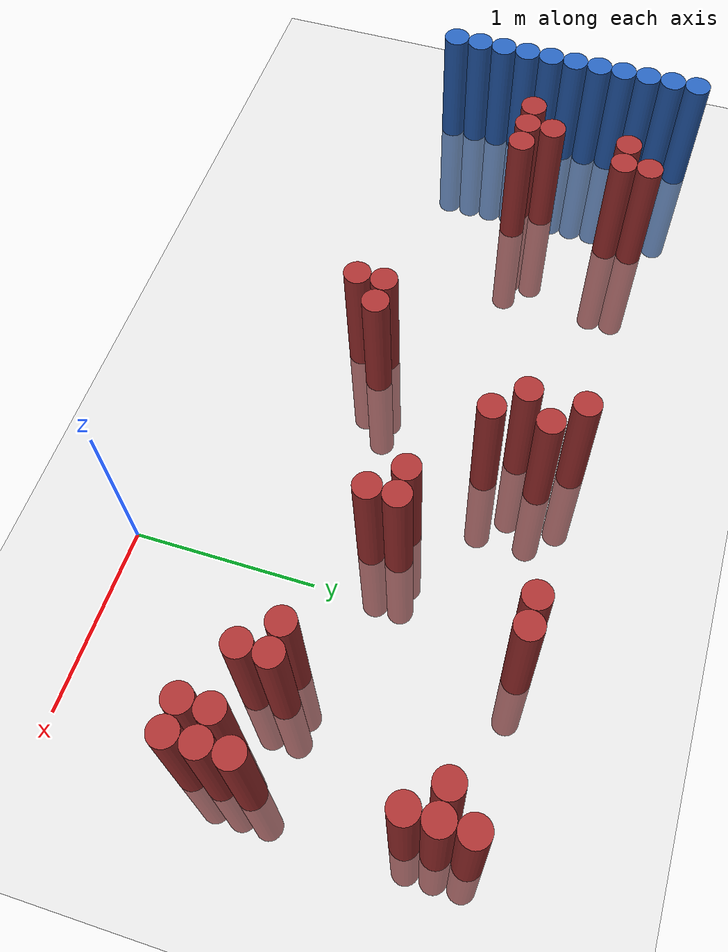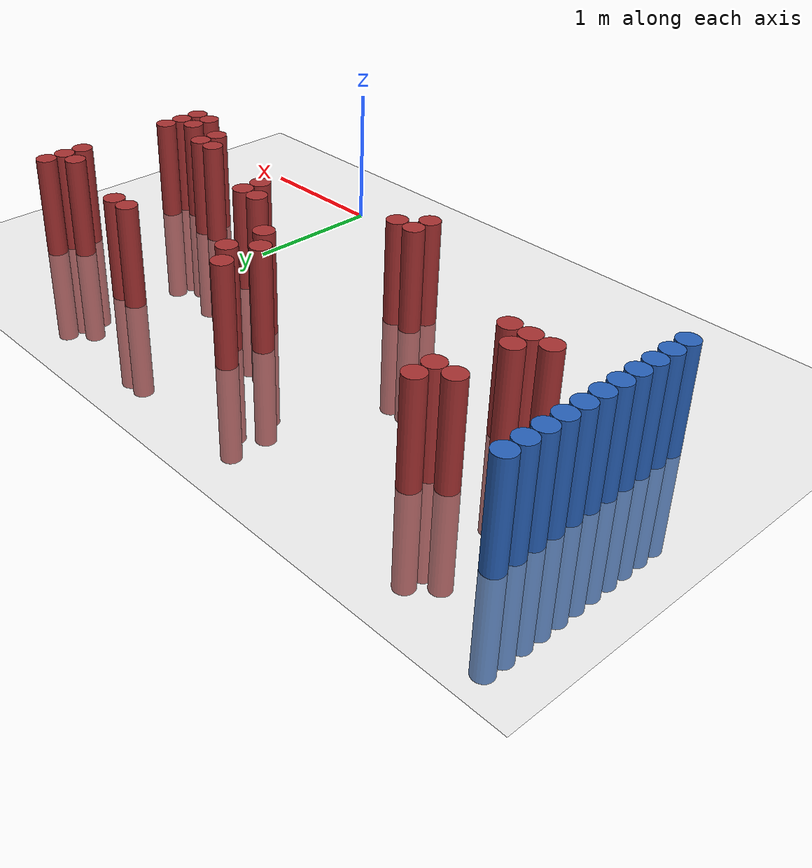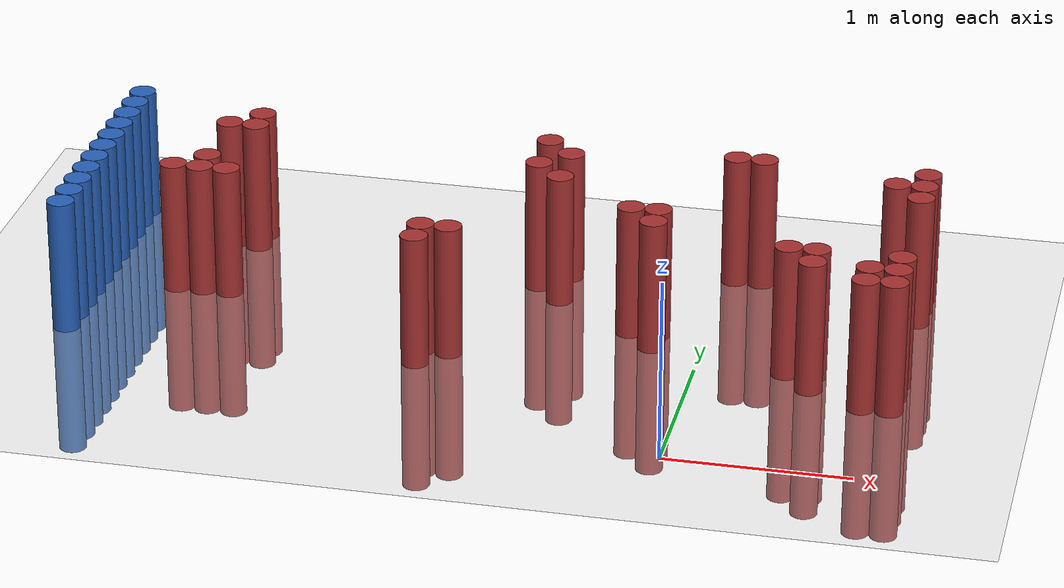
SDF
<sdf version="1.6">
 <world name="default">
  <model name="ground_plane">
   <static>1</static>
   <link name="link">
    <collision name="collision">
     <geometry><plane><normal>0 0 1</normal><size>100 100</size></plane></geometry>
     <surface><friction><ode><mu>100</mu><mu2>50</mu2></ode></friction></surface>
    </collision>
    <visual name="visual">
     <cast_shadows>0</cast_shadows>
     <geometry><plane><normal>0 0 1</normal><size>100 100</size></plane></geometry>
     <material>
      <script><uri>file://media/materials/scripts/gazebo.material</uri><name>Gazebo/Grey</name></script>
     </material>
    </visual>
   </link>
  </model>
  <model name="unit_cylinder_125">
   <static>1</static>
   <pose>-3.425000 0.775000 0.000000 0.000000 0.000000 0.000000</pose>
   <link name="link">
    <inertial>
     <mass>1</mass>
     <inertia><ixx>0.145833</ixx><ixy>0</ixy><ixz>0</ixz><iyy>0.145833</iyy><iyz>0</iyz><izz>0.125</izz></inertia>
    </inertial>
    <collision name="collision">
     <geometry><cylinder><radius>0.075000</radius><length>1.5</length></cylinder></geometry>
    </collision>
    <visual name="visual">
     <geometry><cylinder><radius>0.075000</radius><length>1.5</length></cylinder></geometry>
     <material>
      <ambient>0.152000 0.379000 0.720000 1</ambient>
      <diffuse>0.152000 0.379000 0.720000 1</diffuse>
     </material>
     <material>
      <script><name>Gazebo/Grey</name><uri>file://media/materials/scripts/gazebo.material</uri></script>
     </material>
    </visual>
   </link>
  </model>
  <model name="unit_cylinder_127">
   <static>1</static>
   <pose>-3.425000 0.925000 0.000000 0.000000 0.000000 0.000000</pose>
   <link name="link">
    <inertial>
     <mass>1</mass>
     <inertia><ixx>0.145833</ixx><ixy>0</ixy><ixz>0</ixz><iyy>0.145833</iyy><iyz>0</iyz><izz>0.125</izz></inertia>
    </inertial>
    <collision name="collision">
     <geometry><cylinder><radius>0.075000</radius><length>1.5</length></cylinder></geometry>
    </collision>
    <visual name="visual">
     <geometry><cylinder><radius>0.075000</radius><length>1.5</length></cylinder></geometry>
     <material>
      <ambient>0.152000 0.379000 0.720000 1</ambient>
      <diffuse>0.152000 0.379000 0.720000 1</diffuse>
     </material>
     <material>
      <script><name>Gazebo/Grey</name><uri>file://media/materials/scripts/gazebo.material</uri></script>
     </material>
    </visual>
   </link>
  </model>
  <model name="unit_cylinder_129">
   <static>1</static>
   <pose>-3.425000 1.075000 0.000000 0.000000 0.000000 0.000000</pose>
   <link name="link">
    <inertial>
     <mass>1</mass>
     <inertia><ixx>0.145833</ixx><ixy>0</ixy><ixz>0</ixz><iyy>0.145833</iyy><iyz>0</iyz><izz>0.125</izz></inertia>
    </inertial>
    <collision name="collision">
     <geometry><cylinder><radius>0.075000</radius><length>1.5</length></cylinder></geometry>
    </collision>
    <visual name="visual">
     <geometry><cylinder><radius>0.075000</radius><length>1.5</length></cylinder></geometry>
     <material>
      <ambient>0.152000 0.379000 0.720000 1</ambient>
      <diffuse>0.152000 0.379000 0.720000 1</diffuse>
     </material>
     <material>
      <script><name>Gazebo/Grey</name><uri>file://media/materials/scripts/gazebo.material</uri></script>
     </material>
    </visual>
   </link>
  </model>
  <model name="unit_cylinder_131">
   <static>1</static>
   <pose>-3.425000 1.225000 0.000000 0.000000 0.000000 0.000000</pose>
   <link name="link">
    <inertial>
     <mass>1</mass>
     <inertia><ixx>0.145833</ixx><ixy>0</ixy><ixz>0</ixz><iyy>0.145833</iyy><iyz>0</iyz><izz>0.125</izz></inertia>
    </inertial>
    <collision name="collision">
     <geometry><cylinder><radius>0.075000</radius><length>1.5</length></cylinder></geometry>
    </collision>
    <visual name="visual">
     <geometry><cylinder><radius>0.075000</radius><length>1.5</length></cylinder></geometry>
     <material>
      <ambient>0.152000 0.379000 0.720000 1</ambient>
      <diffuse>0.152000 0.379000 0.720000 1</diffuse>
     </material>
     <material>
      <script><name>Gazebo/Grey</name><uri>file://media/materials/scripts/gazebo.material</uri></script>
     </material>
    </visual>
   </link>
  </model>
  <model name="unit_cylinder_133">
   <static>1</static>
   <pose>-3.425000 1.375000 0.000000 0.000000 0.000000 0.000000</pose>
   <link name="link">
    <inertial>
     <mass>1</mass>
     <inertia><ixx>0.145833</ixx><ixy>0</ixy><ixz>0</ixz><iyy>0.145833</iyy><iyz>0</iyz><izz>0.125</izz></inertia>
    </inertial>
    <collision name="collision">
     <geometry><cylinder><radius>0.075000</radius><length>1.5</length></cylinder></geometry>
    </collision>
    <visual name="visual">
     <geometry><cylinder><radius>0.075000</radius><length>1.5</length></cylinder></geometry>
     <material>
      <ambient>0.152000 0.379000 0.720000 1</ambient>
      <diffuse>0.152000 0.379000 0.720000 1</diffuse>
     </material>
     <material>
      <script><name>Gazebo/Grey</name><uri>file://media/materials/scripts/gazebo.material</uri></script>
     </material>
    </visual>
   </link>
  </model>
  <model name="unit_cylinder_135">
   <static>1</static>
   <pose>-3.425000 1.525000 0.000000 0.000000 0.000000 0.000000</pose>
   <link name="link">
    <inertial>
     <mass>1</mass>
     <inertia><ixx>0.145833</ixx><ixy>0</ixy><ixz>0</ixz><iyy>0.145833</iyy><iyz>0</iyz><izz>0.125</izz></inertia>
    </inertial>
    <collision name="collision">
     <geometry><cylinder><radius>0.075000</radius><length>1.5</length></cylinder></geometry>
    </collision>
    <visual name="visual">
     <geometry><cylinder><radius>0.075000</radius><length>1.5</length></cylinder></geometry>
     <material>
      <ambient>0.152000 0.379000 0.720000 1</ambient>
      <diffuse>0.152000 0.379000 0.720000 1</diffuse>
     </material>
     <material>
      <script><name>Gazebo/Grey</name><uri>file://media/materials/scripts/gazebo.material</uri></script>
     </material>
    </visual>
   </link>
  </model>
  <model name="unit_cylinder_137">
   <static>1</static>
   <pose>-3.425000 1.675000 0.000000 0.000000 0.000000 0.000000</pose>
   <link name="link">
    <inertial>
     <mass>1</mass>
     <inertia><ixx>0.145833</ixx><ixy>0</ixy><ixz>0</ixz><iyy>0.145833</iyy><iyz>0</iyz><izz>0.125</izz></inertia>
    </inertial>
    <collision name="collision">
     <geometry><cylinder><radius>0.075000</radius><length>1.5</length></cylinder></geometry>
    </collision>
    <visual name="visual">
     <geometry><cylinder><radius>0.075000</radius><length>1.5</length></cylinder></geometry>
     <material>
      <ambient>0.152000 0.379000 0.720000 1</ambient>
      <diffuse>0.152000 0.379000 0.720000 1</diffuse>
     </material>
     <material>
      <script><name>Gazebo/Grey</name><uri>file://media/materials/scripts/gazebo.material</uri></script>
     </material>
    </visual>
   </link>
  </model>
  <model name="unit_cylinder_139">
   <static>1</static>
   <pose>-3.425000 1.825000 0.000000 0.000000 0.000000 0.000000</pose>
   <link name="link">
    <inertial>
     <mass>1</mass>
     <inertia><ixx>0.145833</ixx><ixy>0</ixy><ixz>0</ixz><iyy>0.145833</iyy><iyz>0</iyz><izz>0.125</izz></inertia>
    </inertial>
    <collision name="collision">
     <geometry><cylinder><radius>0.075000</radius><length>1.5</length></cylinder></geometry>
    </collision>
    <visual name="visual">
     <geometry><cylinder><radius>0.075000</radius><length>1.5</length></cylinder></geometry>
     <material>
      <ambient>0.152000 0.379000 0.720000 1</ambient>
      <diffuse>0.152000 0.379000 0.720000 1</diffuse>
     </material>
     <material>
      <script><name>Gazebo/Grey</name><uri>file://media/materials/scripts/gazebo.material</uri></script>
     </material>
    </visual>
   </link>
  </model>
  <model name="unit_cylinder_141">
   <static>1</static>
   <pose>-3.425000 1.975000 0.000000 0.000000 0.000000 0.000000</pose>
   <link name="link">
    <inertial>
     <mass>1</mass>
     <inertia><ixx>0.145833</ixx><ixy>0</ixy><ixz>0</ixz><iyy>0.145833</iyy><iyz>0</iyz><izz>0.125</izz></inertia>
    </inertial>
    <collision name="collision">
     <geometry><cylinder><radius>0.075000</radius><length>1.5</length></cylinder></geometry>
    </collision>
    <visual name="visual">
     <geometry><cylinder><radius>0.075000</radius><length>1.5</length></cylinder></geometry>
     <material>
      <ambient>0.152000 0.379000 0.720000 1</ambient>
      <diffuse>0.152000 0.379000 0.720000 1</diffuse>
     </material>
     <material>
      <script><name>Gazebo/Grey</name><uri>file://media/materials/scripts/gazebo.material</uri></script>
     </material>
    </visual>
   </link>
  </model>
  <model name="unit_cylinder_143">
   <static>1</static>
   <pose>-3.425000 2.125000 0.000000 0.000000 0.000000 0.000000</pose>
   <link name="link">
    <inertial>
     <mass>1</mass>
     <inertia><ixx>0.145833</ixx><ixy>0</ixy><ixz>0</ixz><iyy>0.145833</iyy><iyz>0</iyz><izz>0.125</izz></inertia>
    </inertial>
    <collision name="collision">
     <geometry><cylinder><radius>0.075000</radius><length>1.5</length></cylinder></geometry>
    </collision>
    <visual name="visual">
     <geometry><cylinder><radius>0.075000</radius><length>1.5</length></cylinder></geometry>
     <material>
      <ambient>0.152000 0.379000 0.720000 1</ambient>
      <diffuse>0.152000 0.379000 0.720000 1</diffuse>
     </material>
     <material>
      <script><name>Gazebo/Grey</name><uri>file://media/materials/scripts/gazebo.material</uri></script>
     </material>
    </visual>
   </link>
  </model>
  <model name="unit_cylinder_145">
   <static>1</static>
   <pose>-3.425000 2.275000 0.000000 0.000000 0.000000 0.000000</pose>
   <link name="link">
    <inertial>
     <mass>1</mass>
     <inertia><ixx>0.145833</ixx><ixy>0</ixy><ixz>0</ixz><iyy>0.145833</iyy><iyz>0</iyz><izz>0.125</izz></inertia>
    </inertial>
    <collision name="collision">
     <geometry><cylinder><radius>0.075000</radius><length>1.5</length></cylinder></geometry>
    </collision>
    <visual name="visual">
     <geometry><cylinder><radius>0.075000</radius><length>1.5</length></cylinder></geometry>
     <material>
      <ambient>0.152000 0.379000 0.720000 1</ambient>
      <diffuse>0.152000 0.379000 0.720000 1</diffuse>
     </material>
     <material>
      <script><name>Gazebo/Grey</name><uri>file://media/materials/scripts/gazebo.material</uri></script>
     </material>
    </visual>
   </link>
  </model>
  <model name="unit_cylinder_226">
   <static>1</static>
   <pose>-3.425000 0.775000 0.000000 0.000000 0.000000 0.000000</pose>
   <link name="link">
    <inertial>
     <mass>1</mass>
     <inertia><ixx>0.145833</ixx><ixy>0</ixy><ixz>0</ixz><iyy>0.145833</iyy><iyz>0</iyz><izz>0.125</izz></inertia>
    </inertial>
    <collision name="collision">
     <geometry><cylinder><radius>0.075000</radius><length>1.5</length></cylinder></geometry>
    </collision>
    <visual name="visual">
     <geometry><cylinder><radius>0.075000</radius><length>1.5</length></cylinder></geometry>
     <material>
      <ambient>0.152000 0.379000 0.720000 1</ambient>
      <diffuse>0.152000 0.379000 0.720000 1</diffuse>
     </material>
     <material>
      <script><name>Gazebo/Grey</name><uri>file://media/materials/scripts/gazebo.material</uri></script>
     </material>
    </visual>
   </link>
  </model>
  <model name="unit_cylinder_227">
   <static>1</static>
   <pose>-3.425000 0.925000 0.000000 0.000000 0.000000 0.000000</pose>
   <link name="link">
    <inertial>
     <mass>1</mass>
     <inertia><ixx>0.145833</ixx><ixy>0</ixy><ixz>0</ixz><iyy>0.145833</iyy><iyz>0</iyz><izz>0.125</izz></inertia>
    </inertial>
    <collision name="collision">
     <geometry><cylinder><radius>0.075000</radius><length>1.5</length></cylinder></geometry>
    </collision>
    <visual name="visual">
     <geometry><cylinder><radius>0.075000</radius><length>1.5</length></cylinder></geometry>
     <material>
      <ambient>0.152000 0.379000 0.720000 1</ambient>
      <diffuse>0.152000 0.379000 0.720000 1</diffuse>
     </material>
     <material>
      <script><name>Gazebo/Grey</name><uri>file://media/materials/scripts/gazebo.material</uri></script>
     </material>
    </visual>
   </link>
  </model>
  <model name="unit_cylinder_228">
   <static>1</static>
   <pose>-3.425000 1.075000 0.000000 0.000000 0.000000 0.000000</pose>
   <link name="link">
    <inertial>
     <mass>1</mass>
     <inertia><ixx>0.145833</ixx><ixy>0</ixy><ixz>0</ixz><iyy>0.145833</iyy><iyz>0</iyz><izz>0.125</izz></inertia>
    </inertial>
    <collision name="collision">
     <geometry><cylinder><radius>0.075000</radius><length>1.5</length></cylinder></geometry>
    </collision>
    <visual name="visual">
     <geometry><cylinder><radius>0.075000</radius><length>1.5</length></cylinder></geometry>
     <material>
      <ambient>0.152000 0.379000 0.720000 1</ambient>
      <diffuse>0.152000 0.379000 0.720000 1</diffuse>
     </material>
     <material>
      <script><name>Gazebo/Grey</name><uri>file://media/materials/scripts/gazebo.material</uri></script>
     </material>
    </visual>
   </link>
  </model>
  <model name="unit_cylinder_229">
   <static>1</static>
   <pose>-3.425000 1.225000 0.000000 0.000000 0.000000 0.000000</pose>
   <link name="link">
    <inertial>
     <mass>1</mass>
     <inertia><ixx>0.145833</ixx><ixy>0</ixy><ixz>0</ixz><iyy>0.145833</iyy><iyz>0</iyz><izz>0.125</izz></inertia>
    </inertial>
    <collision name="collision">
     <geometry><cylinder><radius>0.075000</radius><length>1.5</length></cylinder></geometry>
    </collision>
    <visual name="visual">
     <geometry><cylinder><radius>0.075000</radius><length>1.5</length></cylinder></geometry>
     <material>
      <ambient>0.152000 0.379000 0.720000 1</ambient>
      <diffuse>0.152000 0.379000 0.720000 1</diffuse>
     </material>
     <material>
      <script><name>Gazebo/Grey</name><uri>file://media/materials/scripts/gazebo.material</uri></script>
     </material>
    </visual>
   </link>
  </model>
  <model name="unit_cylinder_230">
   <static>1</static>
   <pose>-3.425000 1.375000 0.000000 0.000000 0.000000 0.000000</pose>
   <link name="link">
    <inertial>
     <mass>1</mass>
     <inertia><ixx>0.145833</ixx><ixy>0</ixy><ixz>0</ixz><iyy>0.145833</iyy><iyz>0</iyz><izz>0.125</izz></inertia>
    </inertial>
    <collision name="collision">
     <geometry><cylinder><radius>0.075000</radius><length>1.5</length></cylinder></geometry>
    </collision>
    <visual name="visual">
     <geometry><cylinder><radius>0.075000</radius><length>1.5</length></cylinder></geometry>
     <material>
      <ambient>0.152000 0.379000 0.720000 1</ambient>
      <diffuse>0.152000 0.379000 0.720000 1</diffuse>
     </material>
     <material>
      <script><name>Gazebo/Grey</name><uri>file://media/materials/scripts/gazebo.material</uri></script>
     </material>
    </visual>
   </link>
  </model>
  <model name="unit_cylinder_231">
   <static>1</static>
   <pose>-3.425000 1.525000 0.000000 0.000000 0.000000 0.000000</pose>
   <link name="link">
    <inertial>
     <mass>1</mass>
     <inertia><ixx>0.145833</ixx><ixy>0</ixy><ixz>0</ixz><iyy>0.145833</iyy><iyz>0</iyz><izz>0.125</izz></inertia>
    </inertial>
    <collision name="collision">
     <geometry><cylinder><radius>0.075000</radius><length>1.5</length></cylinder></geometry>
    </collision>
    <visual name="visual">
     <geometry><cylinder><radius>0.075000</radius><length>1.5</length></cylinder></geometry>
     <material>
      <ambient>0.152000 0.379000 0.720000 1</ambient>
      <diffuse>0.152000 0.379000 0.720000 1</diffuse>
     </material>
     <material>
      <script><name>Gazebo/Grey</name><uri>file://media/materials/scripts/gazebo.material</uri></script>
     </material>
    </visual>
   </link>
  </model>
  <model name="unit_cylinder_232">
   <static>1</static>
   <pose>-3.425000 1.675000 0.000000 0.000000 0.000000 0.000000</pose>
   <link name="link">
    <inertial>
     <mass>1</mass>
     <inertia><ixx>0.145833</ixx><ixy>0</ixy><ixz>0</ixz><iyy>0.145833</iyy><iyz>0</iyz><izz>0.125</izz></inertia>
    </inertial>
    <collision name="collision">
     <geometry><cylinder><radius>0.075000</radius><length>1.5</length></cylinder></geometry>
    </collision>
    <visual name="visual">
     <geometry><cylinder><radius>0.075000</radius><length>1.5</length></cylinder></geometry>
     <material>
      <ambient>0.152000 0.379000 0.720000 1</ambient>
      <diffuse>0.152000 0.379000 0.720000 1</diffuse>
     </material>
     <material>
      <script><name>Gazebo/Grey</name><uri>file://media/materials/scripts/gazebo.material</uri></script>
     </material>
    </visual>
   </link>
  </model>
  <model name="unit_cylinder_233">
   <static>1</static>
   <pose>-3.425000 1.825000 0.000000 0.000000 0.000000 0.000000</pose>
   <link name="link">
    <inertial>
     <mass>1</mass>
     <inertia><ixx>0.145833</ixx><ixy>0</ixy><ixz>0</ixz><iyy>0.145833</iyy><iyz>0</iyz><izz>0.125</izz></inertia>
    </inertial>
    <collision name="collision">
     <geometry><cylinder><radius>0.075000</radius><length>1.5</length></cylinder></geometry>
    </collision>
    <visual name="visual">
     <geometry><cylinder><radius>0.075000</radius><length>1.5</length></cylinder></geometry>
     <material>
      <ambient>0.152000 0.379000 0.720000 1</ambient>
      <diffuse>0.152000 0.379000 0.720000 1</diffuse>
     </material>
     <material>
      <script><name>Gazebo/Grey</name><uri>file://media/materials/scripts/gazebo.material</uri></script>
     </material>
    </visual>
   </link>
  </model>
  <model name="unit_cylinder_234">
   <static>1</static>
   <pose>-3.425000 1.975000 0.000000 0.000000 0.000000 0.000000</pose>
   <link name="link">
    <inertial>
     <mass>1</mass>
     <inertia><ixx>0.145833</ixx><ixy>0</ixy><ixz>0</ixz><iyy>0.145833</iyy><iyz>0</iyz><izz>0.125</izz></inertia>
    </inertial>
    <collision name="collision">
     <geometry><cylinder><radius>0.075000</radius><length>1.5</length></cylinder></geometry>
    </collision>
    <visual name="visual">
     <geometry><cylinder><radius>0.075000</radius><length>1.5</length></cylinder></geometry>
     <material>
      <ambient>0.152000 0.379000 0.720000 1</ambient>
      <diffuse>0.152000 0.379000 0.720000 1</diffuse>
     </material>
     <material>
      <script><name>Gazebo/Grey</name><uri>file://media/materials/scripts/gazebo.material</uri></script>
     </material>
    </visual>
   </link>
  </model>
  <model name="unit_cylinder_235">
   <static>1</static>
   <pose>-3.425000 2.125000 0.000000 0.000000 0.000000 0.000000</pose>
   <link name="link">
    <inertial>
     <mass>1</mass>
     <inertia><ixx>0.145833</ixx><ixy>0</ixy><ixz>0</ixz><iyy>0.145833</iyy><iyz>0</iyz><izz>0.125</izz></inertia>
    </inertial>
    <collision name="collision">
     <geometry><cylinder><radius>0.075000</radius><length>1.5</length></cylinder></geometry>
    </collision>
    <visual name="visual">
     <geometry><cylinder><radius>0.075000</radius><length>1.5</length></cylinder></geometry>
     <material>
      <ambient>0.152000 0.379000 0.720000 1</ambient>
      <diffuse>0.152000 0.379000 0.720000 1</diffuse>
     </material>
     <material>
      <script><name>Gazebo/Grey</name><uri>file://media/materials/scripts/gazebo.material</uri></script>
     </material>
    </visual>
   </link>
  </model>
  <model name="unit_cylinder_236">
   <static>1</static>
   <pose>-3.425000 2.275000 0.000000 0.000000 0.000000 0.000000</pose>
   <link name="link">
    <inertial>
     <mass>1</mass>
     <inertia><ixx>0.145833</ixx><ixy>0</ixy><ixz>0</ixz><iyy>0.145833</iyy><iyz>0</iyz><izz>0.125</izz></inertia>
    </inertial>
    <collision name="collision">
     <geometry><cylinder><radius>0.075000</radius><length>1.5</length></cylinder></geometry>
    </collision>
    <visual name="visual">
     <geometry><cylinder><radius>0.075000</radius><length>1.5</length></cylinder></geometry>
     <material>
      <ambient>0.152000 0.379000 0.720000 1</ambient>
      <diffuse>0.152000 0.379000 0.720000 1</diffuse>
     </material>
     <material>
      <script><name>Gazebo/Grey</name><uri>file://media/materials/scripts/gazebo.material</uri></script>
     </material>
    </visual>
   </link>
  </model>
  <model name="unit_cylinder_277">
   <static>1</static>
   <pose>-2.975000 1.375000 0.000000 0.000000 0.000000 0.000000</pose>
   <link name="link">
    <inertial>
     <mass>1</mass>
     <inertia><ixx>0.145833</ixx><ixy>0</ixy><ixz>0</ixz><iyy>0.145833</iyy><iyz>0</iyz><izz>0.125</izz></inertia>
    </inertial>
    <collision name="collision">
     <geometry><cylinder><radius>0.075000</radius><length>1.5</length></cylinder></geometry>
    </collision>
    <visual name="visual">
     <geometry><cylinder><radius>0.075000</radius><length>1.5</length></cylinder></geometry>
     <material>
      <ambient>0.648000 0.192000 0.192000 1</ambient>
      <diffuse>0.648000 0.192000 0.192000 1</diffuse>
     </material>
     <material>
      <script><name>Gazebo/Grey</name><uri>file://media/materials/scripts/gazebo.material</uri></script>
     </material>
    </visual>
   </link>
  </model>
  <model name="unit_cylinder_282">
   <static>1</static>
   <pose>-2.825000 1.375000 0.000000 0.000000 0.000000 0.000000</pose>
   <link name="link">
    <inertial>
     <mass>1</mass>
     <inertia><ixx>0.145833</ixx><ixy>0</ixy><ixz>0</ixz><iyy>0.145833</iyy><iyz>0</iyz><izz>0.125</izz></inertia>
    </inertial>
    <collision name="collision">
     <geometry><cylinder><radius>0.075000</radius><length>1.5</length></cylinder></geometry>
    </collision>
    <visual name="visual">
     <geometry><cylinder><radius>0.075000</radius><length>1.5</length></cylinder></geometry>
     <material>
      <ambient>0.648000 0.192000 0.192000 1</ambient>
      <diffuse>0.648000 0.192000 0.192000 1</diffuse>
     </material>
     <material>
      <script><name>Gazebo/Grey</name><uri>file://media/materials/scripts/gazebo.material</uri></script>
     </material>
    </visual>
   </link>
  </model>
  <model name="unit_cylinder_283">
   <static>1</static>
   <pose>-2.825000 1.525000 0.000000 0.000000 0.000000 0.000000</pose>
   <link name="link">
    <inertial>
     <mass>1</mass>
     <inertia><ixx>0.145833</ixx><ixy>0</ixy><ixz>0</ixz><iyy>0.145833</iyy><iyz>0</iyz><izz>0.125</izz></inertia>
    </inertial>
    <collision name="collision">
     <geometry><cylinder><radius>0.075000</radius><length>1.5</length></cylinder></geometry>
    </collision>
    <visual name="visual">
     <geometry><cylinder><radius>0.075000</radius><length>1.5</length></cylinder></geometry>
     <material>
      <ambient>0.648000 0.192000 0.192000 1</ambient>
      <diffuse>0.648000 0.192000 0.192000 1</diffuse>
     </material>
     <material>
      <script><name>Gazebo/Grey</name><uri>file://media/materials/scripts/gazebo.material</uri></script>
     </material>
    </visual>
   </link>
  </model>
  <model name="unit_cylinder_284">
   <static>1</static>
   <pose>-2.825000 1.975000 0.000000 0.000000 0.000000 0.000000</pose>
   <link name="link">
    <inertial>
     <mass>1</mass>
     <inertia><ixx>0.145833</ixx><ixy>0</ixy><ixz>0</ixz><iyy>0.145833</iyy><iyz>0</iyz><izz>0.125</izz></inertia>
    </inertial>
    <collision name="collision">
     <geometry><cylinder><radius>0.075000</radius><length>1.5</length></cylinder></geometry>
    </collision>
    <visual name="visual">
     <geometry><cylinder><radius>0.075000</radius><length>1.5</length></cylinder></geometry>
     <material>
      <ambient>0.648000 0.192000 0.192000 1</ambient>
      <diffuse>0.648000 0.192000 0.192000 1</diffuse>
     </material>
     <material>
      <script><name>Gazebo/Grey</name><uri>file://media/materials/scripts/gazebo.material</uri></script>
     </material>
    </visual>
   </link>
  </model>
  <model name="unit_cylinder_287">
   <static>1</static>
   <pose>-2.675000 1.375000 0.000000 0.000000 0.000000 0.000000</pose>
   <link name="link">
    <inertial>
     <mass>1</mass>
     <inertia><ixx>0.145833</ixx><ixy>0</ixy><ixz>0</ixz><iyy>0.145833</iyy><iyz>0</iyz><izz>0.125</izz></inertia>
    </inertial>
    <collision name="collision">
     <geometry><cylinder><radius>0.075000</radius><length>1.5</length></cylinder></geometry>
    </collision>
    <visual name="visual">
     <geometry><cylinder><radius>0.075000</radius><length>1.5</length></cylinder></geometry>
     <material>
      <ambient>0.648000 0.192000 0.192000 1</ambient>
      <diffuse>0.648000 0.192000 0.192000 1</diffuse>
     </material>
     <material>
      <script><name>Gazebo/Grey</name><uri>file://media/materials/scripts/gazebo.material</uri></script>
     </material>
    </visual>
   </link>
  </model>
  <model name="unit_cylinder_288">
   <static>1</static>
   <pose>-2.675000 1.975000 0.000000 0.000000 0.000000 0.000000</pose>
   <link name="link">
    <inertial>
     <mass>1</mass>
     <inertia><ixx>0.145833</ixx><ixy>0</ixy><ixz>0</ixz><iyy>0.145833</iyy><iyz>0</iyz><izz>0.125</izz></inertia>
    </inertial>
    <collision name="collision">
     <geometry><cylinder><radius>0.075000</radius><length>1.5</length></cylinder></geometry>
    </collision>
    <visual name="visual">
     <geometry><cylinder><radius>0.075000</radius><length>1.5</length></cylinder></geometry>
     <material>
      <ambient>0.648000 0.192000 0.192000 1</ambient>
      <diffuse>0.648000 0.192000 0.192000 1</diffuse>
     </material>
     <material>
      <script><name>Gazebo/Grey</name><uri>file://media/materials/scripts/gazebo.material</uri></script>
     </material>
    </visual>
   </link>
  </model>
  <model name="unit_cylinder_289">
   <static>1</static>
   <pose>-2.675000 2.125000 0.000000 0.000000 0.000000 0.000000</pose>
   <link name="link">
    <inertial>
     <mass>1</mass>
     <inertia><ixx>0.145833</ixx><ixy>0</ixy><ixz>0</ixz><iyy>0.145833</iyy><iyz>0</iyz><izz>0.125</izz></inertia>
    </inertial>
    <collision name="collision">
     <geometry><cylinder><radius>0.075000</radius><length>1.5</length></cylinder></geometry>
    </collision>
    <visual name="visual">
     <geometry><cylinder><radius>0.075000</radius><length>1.5</length></cylinder></geometry>
     <material>
      <ambient>0.648000 0.192000 0.192000 1</ambient>
      <diffuse>0.648000 0.192000 0.192000 1</diffuse>
     </material>
     <material>
      <script><name>Gazebo/Grey</name><uri>file://media/materials/scripts/gazebo.material</uri></script>
     </material>
    </visual>
   </link>
  </model>
  <model name="unit_cylinder_307">
   <static>1</static>
   <pose>-1.475000 0.775000 0.000000 0.000000 0.000000 0.000000</pose>
   <link name="link">
    <inertial>
     <mass>1</mass>
     <inertia><ixx>0.145833</ixx><ixy>0</ixy><ixz>0</ixz><iyy>0.145833</iyy><iyz>0</iyz><izz>0.125</izz></inertia>
    </inertial>
    <collision name="collision">
     <geometry><cylinder><radius>0.075000</radius><length>1.5</length></cylinder></geometry>
    </collision>
    <visual name="visual">
     <geometry><cylinder><radius>0.075000</radius><length>1.5</length></cylinder></geometry>
     <material>
      <ambient>0.648000 0.192000 0.192000 1</ambient>
      <diffuse>0.648000 0.192000 0.192000 1</diffuse>
     </material>
     <material>
      <script><name>Gazebo/Grey</name><uri>file://media/materials/scripts/gazebo.material</uri></script>
     </material>
    </visual>
   </link>
  </model>
  <model name="unit_cylinder_308">
   <static>1</static>
   <pose>-1.475000 0.925000 0.000000 0.000000 0.000000 0.000000</pose>
   <link name="link">
    <inertial>
     <mass>1</mass>
     <inertia><ixx>0.145833</ixx><ixy>0</ixy><ixz>0</ixz><iyy>0.145833</iyy><iyz>0</iyz><izz>0.125</izz></inertia>
    </inertial>
    <collision name="collision">
     <geometry><cylinder><radius>0.075000</radius><length>1.5</length></cylinder></geometry>
    </collision>
    <visual name="visual">
     <geometry><cylinder><radius>0.075000</radius><length>1.5</length></cylinder></geometry>
     <material>
      <ambient>0.648000 0.192000 0.192000 1</ambient>
      <diffuse>0.648000 0.192000 0.192000 1</diffuse>
     </material>
     <material>
      <script><name>Gazebo/Grey</name><uri>file://media/materials/scripts/gazebo.material</uri></script>
     </material>
    </visual>
   </link>
  </model>
  <model name="unit_cylinder_309">
   <static>1</static>
   <pose>-1.325000 0.925000 0.000000 0.000000 0.000000 0.000000</pose>
   <link name="link">
    <inertial>
     <mass>1</mass>
     <inertia><ixx>0.145833</ixx><ixy>0</ixy><ixz>0</ixz><iyy>0.145833</iyy><iyz>0</iyz><izz>0.125</izz></inertia>
    </inertial>
    <collision name="collision">
     <geometry><cylinder><radius>0.075000</radius><length>1.5</length></cylinder></geometry>
    </collision>
    <visual name="visual">
     <geometry><cylinder><radius>0.075000</radius><length>1.5</length></cylinder></geometry>
     <material>
      <ambient>0.648000 0.192000 0.192000 1</ambient>
      <diffuse>0.648000 0.192000 0.192000 1</diffuse>
     </material>
     <material>
      <script><name>Gazebo/Grey</name><uri>file://media/materials/scripts/gazebo.material</uri></script>
     </material>
    </visual>
   </link>
  </model>
  <model name="unit_cylinder_310">
   <static>1</static>
   <pose>-1.025000 1.825000 0.000000 0.000000 0.000000 0.000000</pose>
   <link name="link">
    <inertial>
     <mass>1</mass>
     <inertia><ixx>0.145833</ixx><ixy>0</ixy><ixz>0</ixz><iyy>0.145833</iyy><iyz>0</iyz><izz>0.125</izz></inertia>
    </inertial>
    <collision name="collision">
     <geometry><cylinder><radius>0.075000</radius><length>1.5</length></cylinder></geometry>
    </collision>
    <visual name="visual">
     <geometry><cylinder><radius>0.075000</radius><length>1.5</length></cylinder></geometry>
     <material>
      <ambient>0.648000 0.192000 0.192000 1</ambient>
      <diffuse>0.648000 0.192000 0.192000 1</diffuse>
     </material>
     <material>
      <script><name>Gazebo/Grey</name><uri>file://media/materials/scripts/gazebo.material</uri></script>
     </material>
    </visual>
   </link>
  </model>
  <model name="unit_cylinder_311">
   <static>1</static>
   <pose>-1.025000 2.125000 0.000000 0.000000 0.000000 0.000000</pose>
   <link name="link">
    <inertial>
     <mass>1</mass>
     <inertia><ixx>0.145833</ixx><ixy>0</ixy><ixz>0</ixz><iyy>0.145833</iyy><iyz>0</iyz><izz>0.125</izz></inertia>
    </inertial>
    <collision name="collision">
     <geometry><cylinder><radius>0.075000</radius><length>1.5</length></cylinder></geometry>
    </collision>
    <visual name="visual">
     <geometry><cylinder><radius>0.075000</radius><length>1.5</length></cylinder></geometry>
     <material>
      <ambient>0.648000 0.192000 0.192000 1</ambient>
      <diffuse>0.648000 0.192000 0.192000 1</diffuse>
     </material>
     <material>
      <script><name>Gazebo/Grey</name><uri>file://media/materials/scripts/gazebo.material</uri></script>
     </material>
    </visual>
   </link>
  </model>
  <model name="unit_cylinder_312">
   <static>1</static>
   <pose>-0.875000 1.675000 0.000000 0.000000 0.000000 0.000000</pose>
   <link name="link">
    <inertial>
     <mass>1</mass>
     <inertia><ixx>0.145833</ixx><ixy>0</ixy><ixz>0</ixz><iyy>0.145833</iyy><iyz>0</iyz><izz>0.125</izz></inertia>
    </inertial>
    <collision name="collision">
     <geometry><cylinder><radius>0.075000</radius><length>1.5</length></cylinder></geometry>
    </collision>
    <visual name="visual">
     <geometry><cylinder><radius>0.075000</radius><length>1.5</length></cylinder></geometry>
     <material>
      <ambient>0.648000 0.192000 0.192000 1</ambient>
      <diffuse>0.648000 0.192000 0.192000 1</diffuse>
     </material>
     <material>
      <script><name>Gazebo/Grey</name><uri>file://media/materials/scripts/gazebo.material</uri></script>
     </material>
    </visual>
   </link>
  </model>
  <model name="unit_cylinder_313">
   <static>1</static>
   <pose>-0.875000 1.975000 0.000000 0.000000 0.000000 0.000000</pose>
   <link name="link">
    <inertial>
     <mass>1</mass>
     <inertia><ixx>0.145833</ixx><ixy>0</ixy><ixz>0</ixz><iyy>0.145833</iyy><iyz>0</iyz><izz>0.125</izz></inertia>
    </inertial>
    <collision name="collision">
     <geometry><cylinder><radius>0.075000</radius><length>1.5</length></cylinder></geometry>
    </collision>
    <visual name="visual">
     <geometry><cylinder><radius>0.075000</radius><length>1.5</length></cylinder></geometry>
     <material>
      <ambient>0.648000 0.192000 0.192000 1</ambient>
      <diffuse>0.648000 0.192000 0.192000 1</diffuse>
     </material>
     <material>
      <script><name>Gazebo/Grey</name><uri>file://media/materials/scripts/gazebo.material</uri></script>
     </material>
    </visual>
   </link>
  </model>
  <model name="unit_cylinder_335">
   <static>1</static>
   <pose>-0.425000 1.375000 0.000000 0.000000 0.000000 0.000000</pose>
   <link name="link">
    <inertial>
     <mass>1</mass>
     <inertia><ixx>0.145833</ixx><ixy>0</ixy><ixz>0</ixz><iyy>0.145833</iyy><iyz>0</iyz><izz>0.125</izz></inertia>
    </inertial>
    <collision name="collision">
     <geometry><cylinder><radius>0.075000</radius><length>1.5</length></cylinder></geometry>
    </collision>
    <visual name="visual">
     <geometry><cylinder><radius>0.075000</radius><length>1.5</length></cylinder></geometry>
     <material>
      <ambient>0.648000 0.192000 0.192000 1</ambient>
      <diffuse>0.648000 0.192000 0.192000 1</diffuse>
     </material>
     <material>
      <script><name>Gazebo/Grey</name><uri>file://media/materials/scripts/gazebo.material</uri></script>
     </material>
    </visual>
   </link>
  </model>
  <model name="unit_cylinder_352">
   <static>1</static>
   <pose>-0.275000 1.225000 0.000000 0.000000 0.000000 0.000000</pose>
   <link name="link">
    <inertial>
     <mass>1</mass>
     <inertia><ixx>0.145833</ixx><ixy>0</ixy><ixz>0</ixz><iyy>0.145833</iyy><iyz>0</iyz><izz>0.125</izz></inertia>
    </inertial>
    <collision name="collision">
     <geometry><cylinder><radius>0.075000</radius><length>1.5</length></cylinder></geometry>
    </collision>
    <visual name="visual">
     <geometry><cylinder><radius>0.075000</radius><length>1.5</length></cylinder></geometry>
     <material>
      <ambient>0.648000 0.192000 0.192000 1</ambient>
      <diffuse>0.648000 0.192000 0.192000 1</diffuse>
     </material>
     <material>
      <script><name>Gazebo/Grey</name><uri>file://media/materials/scripts/gazebo.material</uri></script>
     </material>
    </visual>
   </link>
  </model>
  <model name="unit_cylinder_353">
   <static>1</static>
   <pose>-0.275000 1.375000 0.000000 0.000000 0.000000 0.000000</pose>
   <link name="link">
    <inertial>
     <mass>1</mass>
     <inertia><ixx>0.145833</ixx><ixy>0</ixy><ixz>0</ixz><iyy>0.145833</iyy><iyz>0</iyz><izz>0.125</izz></inertia>
    </inertial>
    <collision name="collision">
     <geometry><cylinder><radius>0.075000</radius><length>1.5</length></cylinder></geometry>
    </collision>
    <visual name="visual">
     <geometry><cylinder><radius>0.075000</radius><length>1.5</length></cylinder></geometry>
     <material>
      <ambient>0.648000 0.192000 0.192000 1</ambient>
      <diffuse>0.648000 0.192000 0.192000 1</diffuse>
     </material>
     <material>
      <script><name>Gazebo/Grey</name><uri>file://media/materials/scripts/gazebo.material</uri></script>
     </material>
    </visual>
   </link>
  </model>
  <model name="unit_cylinder_369">
   <static>1</static>
   <pose>0.025000 2.125000 0.000000 0.000000 0.000000 0.000000</pose>
   <link name="link">
    <inertial>
     <mass>1</mass>
     <inertia><ixx>0.145833</ixx><ixy>0</ixy><ixz>0</ixz><iyy>0.145833</iyy><iyz>0</iyz><izz>0.125</izz></inertia>
    </inertial>
    <collision name="collision">
     <geometry><cylinder><radius>0.075000</radius><length>1.5</length></cylinder></geometry>
    </collision>
    <visual name="visual">
     <geometry><cylinder><radius>0.075000</radius><length>1.5</length></cylinder></geometry>
     <material>
      <ambient>0.648000 0.192000 0.192000 1</ambient>
      <diffuse>0.648000 0.192000 0.192000 1</diffuse>
     </material>
     <material>
      <script><name>Gazebo/Grey</name><uri>file://media/materials/scripts/gazebo.material</uri></script>
     </material>
    </visual>
   </link>
  </model>
  <model name="unit_cylinder_377">
   <static>1</static>
   <pose>0.175000 2.125000 0.000000 0.000000 0.000000 0.000000</pose>
   <link name="link">
    <inertial>
     <mass>1</mass>
     <inertia><ixx>0.145833</ixx><ixy>0</ixy><ixz>0</ixz><iyy>0.145833</iyy><iyz>0</iyz><izz>0.125</izz></inertia>
    </inertial>
    <collision name="collision">
     <geometry><cylinder><radius>0.075000</radius><length>1.5</length></cylinder></geometry>
    </collision>
    <visual name="visual">
     <geometry><cylinder><radius>0.075000</radius><length>1.5</length></cylinder></geometry>
     <material>
      <ambient>0.648000 0.192000 0.192000 1</ambient>
      <diffuse>0.648000 0.192000 0.192000 1</diffuse>
     </material>
     <material>
      <script><name>Gazebo/Grey</name><uri>file://media/materials/scripts/gazebo.material</uri></script>
     </material>
    </visual>
   </link>
  </model>
  <model name="unit_cylinder_395">
   <static>1</static>
   <pose>0.475000 1.075000 0.000000 0.000000 0.000000 0.000000</pose>
   <link name="link">
    <inertial>
     <mass>1</mass>
     <inertia><ixx>0.145833</ixx><ixy>0</ixy><ixz>0</ixz><iyy>0.145833</iyy><iyz>0</iyz><izz>0.125</izz></inertia>
    </inertial>
    <collision name="collision">
     <geometry><cylinder><radius>0.075000</radius><length>1.5</length></cylinder></geometry>
    </collision>
    <visual name="visual">
     <geometry><cylinder><radius>0.075000</radius><length>1.5</length></cylinder></geometry>
     <material>
      <ambient>0.648000 0.192000 0.192000 1</ambient>
      <diffuse>0.648000 0.192000 0.192000 1</diffuse>
     </material>
     <material>
      <script><name>Gazebo/Grey</name><uri>file://media/materials/scripts/gazebo.material</uri></script>
     </material>
    </visual>
   </link>
  </model>
  <model name="unit_cylinder_402">
   <static>1</static>
   <pose>0.625000 0.925000 0.000000 0.000000 0.000000 0.000000</pose>
   <link name="link">
    <inertial>
     <mass>1</mass>
     <inertia><ixx>0.145833</ixx><ixy>0</ixy><ixz>0</ixz><iyy>0.145833</iyy><iyz>0</iyz><izz>0.125</izz></inertia>
    </inertial>
    <collision name="collision">
     <geometry><cylinder><radius>0.075000</radius><length>1.5</length></cylinder></geometry>
    </collision>
    <visual name="visual">
     <geometry><cylinder><radius>0.075000</radius><length>1.5</length></cylinder></geometry>
     <material>
      <ambient>0.648000 0.192000 0.192000 1</ambient>
      <diffuse>0.648000 0.192000 0.192000 1</diffuse>
     </material>
     <material>
      <script><name>Gazebo/Grey</name><uri>file://media/materials/scripts/gazebo.material</uri></script>
     </material>
    </visual>
   </link>
  </model>
  <model name="unit_cylinder_403">
   <static>1</static>
   <pose>0.625000 1.075000 0.000000 0.000000 0.000000 0.000000</pose>
   <link name="link">
    <inertial>
     <mass>1</mass>
     <inertia><ixx>0.145833</ixx><ixy>0</ixy><ixz>0</ixz><iyy>0.145833</iyy><iyz>0</iyz><izz>0.125</izz></inertia>
    </inertial>
    <collision name="collision">
     <geometry><cylinder><radius>0.075000</radius><length>1.5</length></cylinder></geometry>
    </collision>
    <visual name="visual">
     <geometry><cylinder><radius>0.075000</radius><length>1.5</length></cylinder></geometry>
     <material>
      <ambient>0.648000 0.192000 0.192000 1</ambient>
      <diffuse>0.648000 0.192000 0.192000 1</diffuse>
     </material>
     <material>
      <script><name>Gazebo/Grey</name><uri>file://media/materials/scripts/gazebo.material</uri></script>
     </material>
    </visual>
   </link>
  </model>
  <model name="unit_cylinder_423">
   <static>1</static>
   <pose>0.925000 0.775000 0.000000 0.000000 0.000000 0.000000</pose>
   <link name="link">
    <inertial>
     <mass>1</mass>
     <inertia><ixx>0.145833</ixx><ixy>0</ixy><ixz>0</ixz><iyy>0.145833</iyy><iyz>0</iyz><izz>0.125</izz></inertia>
    </inertial>
    <collision name="collision">
     <geometry><cylinder><radius>0.075000</radius><length>1.5</length></cylinder></geometry>
    </collision>
    <visual name="visual">
     <geometry><cylinder><radius>0.075000</radius><length>1.5</length></cylinder></geometry>
     <material>
      <ambient>0.648000 0.192000 0.192000 1</ambient>
      <diffuse>0.648000 0.192000 0.192000 1</diffuse>
     </material>
     <material>
      <script><name>Gazebo/Grey</name><uri>file://media/materials/scripts/gazebo.material</uri></script>
     </material>
    </visual>
   </link>
  </model>
  <model name="unit_cylinder_424">
   <static>1</static>
   <pose>0.925000 0.925000 0.000000 0.000000 0.000000 0.000000</pose>
   <link name="link">
    <inertial>
     <mass>1</mass>
     <inertia><ixx>0.145833</ixx><ixy>0</ixy><ixz>0</ixz><iyy>0.145833</iyy><iyz>0</iyz><izz>0.125</izz></inertia>
    </inertial>
    <collision name="collision">
     <geometry><cylinder><radius>0.075000</radius><length>1.5</length></cylinder></geometry>
    </collision>
    <visual name="visual">
     <geometry><cylinder><radius>0.075000</radius><length>1.5</length></cylinder></geometry>
     <material>
      <ambient>0.648000 0.192000 0.192000 1</ambient>
      <diffuse>0.648000 0.192000 0.192000 1</diffuse>
     </material>
     <material>
      <script><name>Gazebo/Grey</name><uri>file://media/materials/scripts/gazebo.material</uri></script>
     </material>
    </visual>
   </link>
  </model>
  <model name="unit_cylinder_425">
   <static>1</static>
   <pose>0.925000 1.975000 0.000000 0.000000 0.000000 0.000000</pose>
   <link name="link">
    <inertial>
     <mass>1</mass>
     <inertia><ixx>0.145833</ixx><ixy>0</ixy><ixz>0</ixz><iyy>0.145833</iyy><iyz>0</iyz><izz>0.125</izz></inertia>
    </inertial>
    <collision name="collision">
     <geometry><cylinder><radius>0.075000</radius><length>1.5</length></cylinder></geometry>
    </collision>
    <visual name="visual">
     <geometry><cylinder><radius>0.075000</radius><length>1.5</length></cylinder></geometry>
     <material>
      <ambient>0.648000 0.192000 0.192000 1</ambient>
      <diffuse>0.648000 0.192000 0.192000 1</diffuse>
     </material>
     <material>
      <script><name>Gazebo/Grey</name><uri>file://media/materials/scripts/gazebo.material</uri></script>
     </material>
    </visual>
   </link>
  </model>
  <model name="unit_cylinder_434">
   <static>1</static>
   <pose>1.075000 0.775000 0.000000 0.000000 0.000000 0.000000</pose>
   <link name="link">
    <inertial>
     <mass>1</mass>
     <inertia><ixx>0.145833</ixx><ixy>0</ixy><ixz>0</ixz><iyy>0.145833</iyy><iyz>0</iyz><izz>0.125</izz></inertia>
    </inertial>
    <collision name="collision">
     <geometry><cylinder><radius>0.075000</radius><length>1.5</length></cylinder></geometry>
    </collision>
    <visual name="visual">
     <geometry><cylinder><radius>0.075000</radius><length>1.5</length></cylinder></geometry>
     <material>
      <ambient>0.648000 0.192000 0.192000 1</ambient>
      <diffuse>0.648000 0.192000 0.192000 1</diffuse>
     </material>
     <material>
      <script><name>Gazebo/Grey</name><uri>file://media/materials/scripts/gazebo.material</uri></script>
     </material>
    </visual>
   </link>
  </model>
  <model name="unit_cylinder_435">
   <static>1</static>
   <pose>1.075000 0.925000 0.000000 0.000000 0.000000 0.000000</pose>
   <link name="link">
    <inertial>
     <mass>1</mass>
     <inertia><ixx>0.145833</ixx><ixy>0</ixy><ixz>0</ixz><iyy>0.145833</iyy><iyz>0</iyz><izz>0.125</izz></inertia>
    </inertial>
    <collision name="collision">
     <geometry><cylinder><radius>0.075000</radius><length>1.5</length></cylinder></geometry>
    </collision>
    <visual name="visual">
     <geometry><cylinder><radius>0.075000</radius><length>1.5</length></cylinder></geometry>
     <material>
      <ambient>0.648000 0.192000 0.192000 1</ambient>
      <diffuse>0.648000 0.192000 0.192000 1</diffuse>
     </material>
     <material>
      <script><name>Gazebo/Grey</name><uri>file://media/materials/scripts/gazebo.material</uri></script>
     </material>
    </visual>
   </link>
  </model>
  <model name="unit_cylinder_436">
   <static>1</static>
   <pose>1.075000 1.075000 0.000000 0.000000 0.000000 0.000000</pose>
   <link name="link">
    <inertial>
     <mass>1</mass>
     <inertia><ixx>0.145833</ixx><ixy>0</ixy><ixz>0</ixz><iyy>0.145833</iyy><iyz>0</iyz><izz>0.125</izz></inertia>
    </inertial>
    <collision name="collision">
     <geometry><cylinder><radius>0.075000</radius><length>1.5</length></cylinder></geometry>
    </collision>
    <visual name="visual">
     <geometry><cylinder><radius>0.075000</radius><length>1.5</length></cylinder></geometry>
     <material>
      <ambient>0.648000 0.192000 0.192000 1</ambient>
      <diffuse>0.648000 0.192000 0.192000 1</diffuse>
     </material>
     <material>
      <script><name>Gazebo/Grey</name><uri>file://media/materials/scripts/gazebo.material</uri></script>
     </material>
    </visual>
   </link>
  </model>
  <model name="unit_cylinder_437">
   <static>1</static>
   <pose>1.075000 1.825000 0.000000 0.000000 0.000000 0.000000</pose>
   <link name="link">
    <inertial>
     <mass>1</mass>
     <inertia><ixx>0.145833</ixx><ixy>0</ixy><ixz>0</ixz><iyy>0.145833</iyy><iyz>0</iyz><izz>0.125</izz></inertia>
    </inertial>
    <collision name="collision">
     <geometry><cylinder><radius>0.075000</radius><length>1.5</length></cylinder></geometry>
    </collision>
    <visual name="visual">
     <geometry><cylinder><radius>0.075000</radius><length>1.5</length></cylinder></geometry>
     <material>
      <ambient>0.648000 0.192000 0.192000 1</ambient>
      <diffuse>0.648000 0.192000 0.192000 1</diffuse>
     </material>
     <material>
      <script><name>Gazebo/Grey</name><uri>file://media/materials/scripts/gazebo.material</uri></script>
     </material>
    </visual>
   </link>
  </model>
  <model name="unit_cylinder_438">
   <static>1</static>
   <pose>1.075000 1.975000 0.000000 0.000000 0.000000 0.000000</pose>
   <link name="link">
    <inertial>
     <mass>1</mass>
     <inertia><ixx>0.145833</ixx><ixy>0</ixy><ixz>0</ixz><iyy>0.145833</iyy><iyz>0</iyz><izz>0.125</izz></inertia>
    </inertial>
    <collision name="collision">
     <geometry><cylinder><radius>0.075000</radius><length>1.5</length></cylinder></geometry>
    </collision>
    <visual name="visual">
     <geometry><cylinder><radius>0.075000</radius><length>1.5</length></cylinder></geometry>
     <material>
      <ambient>0.648000 0.192000 0.192000 1</ambient>
      <diffuse>0.648000 0.192000 0.192000 1</diffuse>
     </material>
     <material>
      <script><name>Gazebo/Grey</name><uri>file://media/materials/scripts/gazebo.material</uri></script>
     </material>
    </visual>
   </link>
  </model>
  <model name="unit_cylinder_439">
   <static>1</static>
   <pose>1.075000 2.125000 0.000000 0.000000 0.000000 0.000000</pose>
   <link name="link">
    <inertial>
     <mass>1</mass>
     <inertia><ixx>0.145833</ixx><ixy>0</ixy><ixz>0</ixz><iyy>0.145833</iyy><iyz>0</iyz><izz>0.125</izz></inertia>
    </inertial>
    <collision name="collision">
     <geometry><cylinder><radius>0.075000</radius><length>1.5</length></cylinder></geometry>
    </collision>
    <visual name="visual">
     <geometry><cylinder><radius>0.075000</radius><length>1.5</length></cylinder></geometry>
     <material>
      <ambient>0.648000 0.192000 0.192000 1</ambient>
      <diffuse>0.648000 0.192000 0.192000 1</diffuse>
     </material>
     <material>
      <script><name>Gazebo/Grey</name><uri>file://media/materials/scripts/gazebo.material</uri></script>
     </material>
    </visual>
   </link>
  </model>
 </world>
</sdf>
